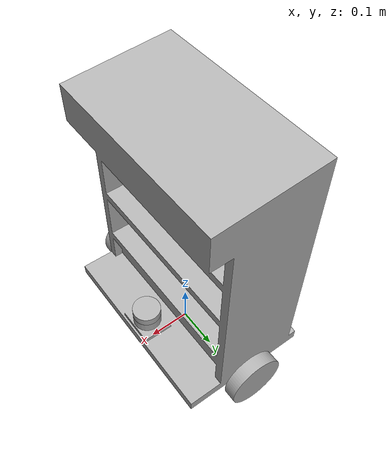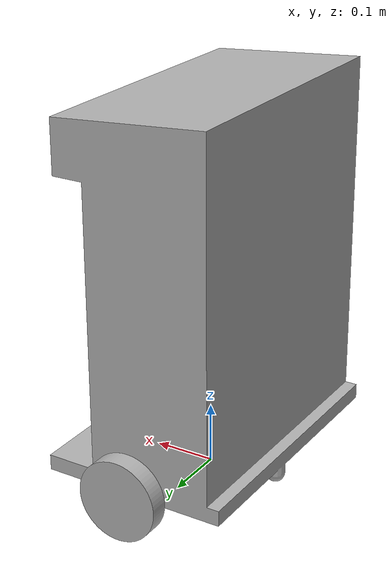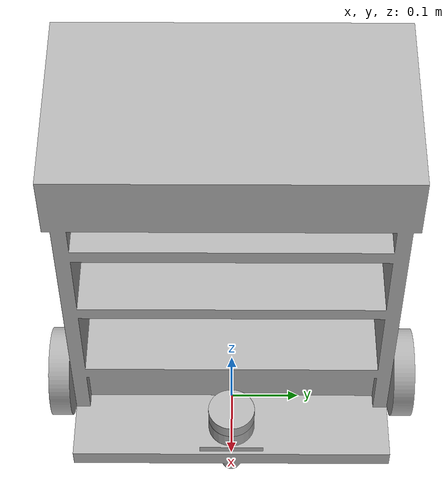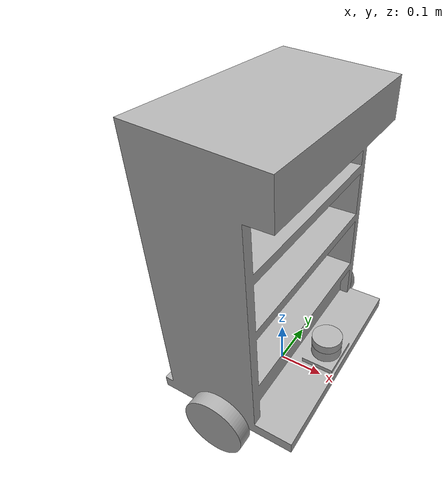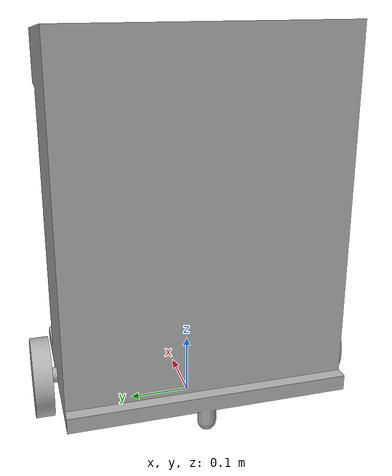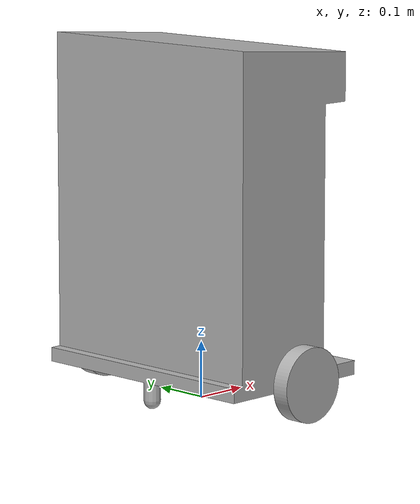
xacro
<?xml version="1.0" ?>
<robot name="mainbot" xmlns:xacro="http://www.ros.org/wiki/xacro">

<xacro:include filename="$(find mainbot_description)/urdf/materials.xacro" />
<xacro:include filename="$(find mainbot_description)/urdf/mainbot.trans" />
<xacro:include filename="$(find mainbot_description)/urdf/mainbot.gazebo" />
<link name="base_link">
  <inertial>
    <origin xyz="-0.030125578935262368 -2.7066655598484006e-17 0.32719912210513064" rpy="0 0 0"/>
    <mass value="22.795620369045984"/>
    <inertia ixx="1.343081" iyy="0.996521" izz="0.620881" ixy="0.0" iyz="-0.0" ixz="0.006188"/>
  </inertial>
  <visual>
    <origin xyz="0 0 0" rpy="0 0 0"/>
    <geometry>
      <mesh filename="package://mainbot_description/meshes/base_link.stl" scale="0.001 0.001 0.001"/>
    </geometry>
    <material name="silver"/>
  </visual>
  <collision>
    <origin xyz="0 0 0" rpy="0 0 0"/>
    <geometry>
      <mesh filename="package://mainbot_description/meshes/base_link.stl" scale="0.001 0.001 0.001"/>
    </geometry>
  </collision>
</link>

<link name="right_wheel_1">
  <inertial>
    <origin xyz="-1.1420163905566134e-17 -0.015000000000000069 -1.3877787807814457e-17" rpy="0 0 0"/>
    <mass value="0.37032308802353076"/>
    <inertia ixx="0.000419" iyy="0.000782" izz="0.000419" ixy="0.0" iyz="-0.0" ixz="-0.0"/>
  </inertial>
  <visual>
    <origin xyz="-0.0 0.235 -0.065" rpy="0 0 0"/>
    <geometry>
      <mesh filename="package://mainbot_description/meshes/right_wheel_1.stl" scale="0.001 0.001 0.001"/>
    </geometry>
    <material name="silver"/>
  </visual>
  <collision>
    <origin xyz="-0.0 0.235 -0.065" rpy="0 0 0"/>
    <geometry>
      <mesh filename="package://mainbot_description/meshes/right_wheel_1.stl" scale="0.001 0.001 0.001"/>
    </geometry>
  </collision>
</link>

<link name="left_wheel_1">
  <inertial>
    <origin xyz="-1.1420163905566134e-17 0.015000000000000069 -1.3877787807814457e-17" rpy="0 0 0"/>
    <mass value="0.37032308802353076"/>
    <inertia ixx="0.000419" iyy="0.000782" izz="0.000419" ixy="0.0" iyz="0.0" ixz="-0.0"/>
  </inertial>
  <visual>
    <origin xyz="-0.0 -0.235 -0.065" rpy="0 0 0"/>
    <geometry>
      <mesh filename="package://mainbot_description/meshes/left_wheel_1.stl" scale="0.001 0.001 0.001"/>
    </geometry>
    <material name="silver"/>
  </visual>
  <collision>
    <origin xyz="-0.0 -0.235 -0.065" rpy="0 0 0"/>
    <geometry>
      <mesh filename="package://mainbot_description/meshes/left_wheel_1.stl" scale="0.001 0.001 0.001"/>
    </geometry>
  </collision>
</link>

<link name="lidar_1">
  <inertial>
    <origin xyz="0.0 -1.2847684393761896e-17 0.010000000000000009" rpy="0 0 0"/>
    <mass value="0.09158527983377646"/>
    <inertia ixx="2.7e-05" iyy="2.7e-05" izz="4.8e-05" ixy="-0.0" iyz="0.0" ixz="0.0"/>
  </inertial>
  <visual>
    <origin xyz="-0.11 -0.0 -0.1125" rpy="0 0 0"/>
    <geometry>
      <mesh filename="package://mainbot_description/meshes/lidar_1.stl" scale="0.001 0.001 0.001"/>
    </geometry>
    <material name="silver"/>
  </visual>
  <collision>
    <origin xyz="-0.11 -0.0 -0.1125" rpy="0 0 0"/>
    <geometry>
      <mesh filename="package://mainbot_description/meshes/lidar_1.stl" scale="0.001 0.001 0.001"/>
    </geometry>
  </collision>
</link>

<joint name="Rev1" type="continuous">
  <origin xyz="0.0 -0.235 0.065" rpy="0 0 0"/>
  <parent link="base_link"/>
  <child link="right_wheel_1"/>
  <axis xyz="0.0 1.0 0.0"/>
</joint>

<joint name="Rev2" type="continuous">
  <origin xyz="0.0 0.235 0.065" rpy="0 0 0"/>
  <parent link="base_link"/>
  <child link="left_wheel_1"/>
  <axis xyz="0.0 1.0 0.0"/>
</joint>

<joint name="Rigid3" type="fixed">
  <origin xyz="0.11 0.0 0.1125" rpy="0 0 0"/>
  <parent link="base_link"/>
  <child link="lidar_1"/>
</joint>

</robot>

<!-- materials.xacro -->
<robot name="mainbot" xmlns:xacro="http://www.ros.org/wiki/xacro" >

<material name="silver">
  <color rgba="0.700 0.700 0.700 1.000"/>
</material>

</robot>

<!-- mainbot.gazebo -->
<robot name="mainbot" xmlns:xacro="http://www.ros.org/wiki/xacro" >

<xacro:property name="body_color" value="Gazebo/Silver" />

<gazebo>
  <plugin name="control" filename="libgazebo_ros_control.so"/>
</gazebo>
<gazebo reference="base_link">
  <material>${body_color}</material>
  <mu1>0.1</mu1>
  <mu2>0.1</mu2>
  <selfCollide>true</selfCollide>
  <gravity>true</gravity>
</gazebo>

<gazebo reference="right_wheel_1">
  <material>${body_color}</material>
  <mu1>1500</mu1>
  <mu2>1500</mu2>
  <selfCollide>true</selfCollide>
</gazebo>

<gazebo reference="left_wheel_1">
  <material>${body_color}</material>
  <mu1>1500</mu1>
  <mu2>1500</mu2>
  <selfCollide>true</selfCollide>
</gazebo>

<gazebo reference="lidar_1">
  <material>${body_color}</material>
  <mu1>0.2</mu1>
  <mu2>0.2</mu2>
  <selfCollide>true</selfCollide>
</gazebo>
<gazebo>
  <plugin name="differential_drive_controller" filename="libgazebo_ros_diff_drive.so">

    <!-- Plugin update rate in Hz -->
    <updateRate>100</updateRate>

    <!-- Name of left joint, defaults to `left_joint` -->
    <leftJoint>Rev2</leftJoint>

    <!-- Name of right joint, defaults to `right_joint` -->
    <rightJoint>Rev1</rightJoint>

    <!-- The distance from the center of one wheel to the other, in meters, defaults to 0.34 m -->
    <wheelSeparation>0.45</wheelSeparation>

    <!-- Diameter of the wheels, in meters, defaults to 0.15 m -->
    <wheelDiameter>0.13</wheelDiameter>

    <!-- Wheel acceleration, in rad/s^2, defaults to 0.0 rad/s^2 -->
    <wheelAcceleration>1.0</wheelAcceleration>

    <!-- Maximum torque which the wheels can produce, in Nm, defaults to 5 Nm -->
    <wheelTorque>50</wheelTorque>

    <!-- Topic to receive geometry_msgs/Twist message commands, defaults to `cmd_vel` -->
    <commandTopic>cmd_vel</commandTopic>

    <!-- Topic to publish nav_msgs/Odometry messages, defaults to `odom` -->
    <odometryTopic>odom</odometryTopic>

    <!-- Odometry frame, defaults to `odom` -->
    <odometryFrame>odom</odometryFrame>

    <!-- Robot frame to calculate odometry from, defaults to `base_footprint` -->
    <robotBaseFrame>base_link</robotBaseFrame>

    <!-- Odometry source, 0 for ENCODER, 1 for WORLD, defaults to WORLD -->
    <odometrySource>1</odometrySource>

    <!-- Set to true to publish transforms for the wheel links, defaults to false -->
    <publishWheelTF>true</publishWheelTF>

    <!-- Set to true to publish transforms for the odometry, defaults to true -->
    <publishOdom>true</publishOdom>

    <!-- Set to true to publish sensor_msgs/JointState on /joint_states for the wheel joints, defaults to false -->
    <publishWheelJointState>true</publishWheelJointState>

    <!-- Set to true to swap right and left wheels, defaults to true -->
    <legacyMode>false</legacyMode>
  </plugin>
</gazebo>
<!-- hokuyo -->
  <gazebo reference="lidar_1">
    <sensor type="ray" name="head_hokuyo_sensor">
      <pose>0 0 0 0 0 0</pose>
      <visualize>true</visualize>
      <update_rate>40</update_rate>
      <ray>
        <scan>
          <horizontal>
            <samples>720</samples>
            <resolution>1</resolution>
            <min_angle>-1.570796</min_angle>
            <max_angle>1.570796</max_angle>
          </horizontal>
        </scan>
        <range>
          <min>0.10</min>
          <max>30.0</max>
          <resolution>0.01</resolution>
        </range>
        <noise>
          <type>gaussian</type>
          <mean>0.0</mean>
          <stddev>0.01</stddev>
        </noise>
      </ray>
      <plugin name="gazebo_ros_head_hokuyo_controller" filename="libgazebo_ros_laser.so">
        <topicName>/scan</topicName>
        <frameName>lidar_1</frameName>
      </plugin>
    </sensor>
  </gazebo>
</robot>
